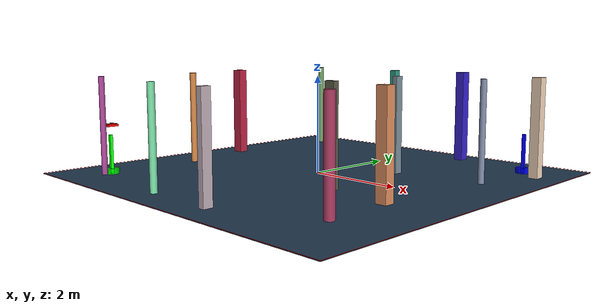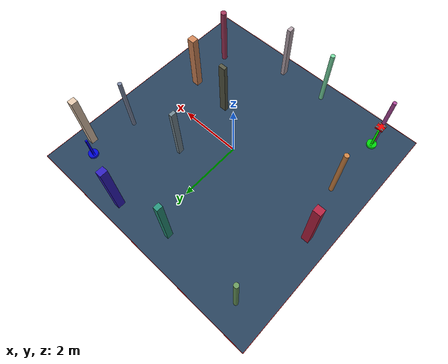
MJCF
<?xml version='1.0' encoding='utf-8'?>
<mujoco model="complex_uav_env">
  <compiler angle="degree" coordinate="local" inertiafromgeom="true" />
  <option integrator="RK4" timestep="0.01" />

  <visual>
    <headlight diffuse="0.6 0.6 0.6" ambient="0.3 0.3 0.3" />
    <rgba haze="0.15 0.25 0.35 1" />
    <global offwidth="2560" offheight="1440" />
  </visual>

  <asset>
    <texture type="skybox" builtin="gradient" rgb1="0.3 0.5 0.7" rgb2="0 0 0" width="512" height="3072" />
    <texture name="grid" type="2d" builtin="checker" rgb1="0.1 0.2 0.3" rgb2="0.2 0.3 0.4" width="512" height="512" />
    <material name="grid" texture="grid" texrepeat="1 1" />
  </asset>

  <worldbody>

    <geom name="ground" type="plane" size="4.0 4.0 0.1" material="grid" />
    <light name="light1" pos="0 0 4" dir="0 0 -1" diffuse="1 1 1" />

    <geom name="start_marker" type="cylinder" size="0.15 0.05" pos="-3.0 -3.0 0.05" rgba="0 1 0 0.8" />
    <geom name="start_pole" type="box" size="0.03 0.03 0.4" pos="-3.0 -3.0 0.4" rgba="0 1 0 1" />

    <geom name="goal_marker" type="cylinder" size="0.15 0.05" pos="3.0 3.0 0.05" rgba="0 0 1 0.8" />
    <geom name="goal_pole" type="box" size="0.03 0.03 0.4" pos="3.0 3.0 0.4" rgba="0 0 1 1" />

    <body name="chassis" pos="-3.0 -3.0 1.0">
      <joint type="free" name="root" />
      <geom type="box" size="0.12 0.12 0.02" rgba="1.0 0.0 0.0 1.0" mass="0.8" />

      <geom type="box" size="0.08 0.01 0.005" pos="0 0 0.01" rgba="0.3 0.3 0.3 1" />
      <geom type="box" size="0.01 0.08 0.005" pos="0 0 0.01" rgba="0.3 0.3 0.3 1" />

      <geom type="cylinder" size="0.015 0.02" pos="0.08 0.08 0.015" rgba="0.2 0.2 0.2 1" />
      <geom type="cylinder" size="0.015 0.02" pos="-0.08 0.08 0.015" rgba="0.2 0.2 0.2 1" />
      <geom type="cylinder" size="0.015 0.02" pos="0.08 -0.08 0.015" rgba="0.2 0.2 0.2 1" />
      <geom type="cylinder" size="0.015 0.02" pos="-0.08 -0.08 0.015" rgba="0.2 0.2 0.2 1" />

      <geom type="cylinder" size="0.04 0.002" pos="0.08 0.08 0.035" rgba="0.7 0.7 0.7 0.8" />
      <geom type="cylinder" size="0.04 0.002" pos="-0.08 0.08 0.035" rgba="0.7 0.7 0.7 0.8" />
      <geom type="cylinder" size="0.04 0.002" pos="0.08 -0.08 0.035" rgba="0.7 0.7 0.7 0.8" />
      <geom type="cylinder" size="0.04 0.002" pos="-0.08 -0.08 0.035" rgba="0.7 0.7 0.7 0.8" />

      <site name="motor1" pos="0.08 0.08 0" size="0.01" />
      <site name="motor2" pos="-0.08 0.08 0" size="0.01" />
      <site name="motor3" pos="0.08 -0.08 0" size="0.01" />
      <site name="motor4" pos="-0.08 -0.08 0" size="0.01" />
    </body>
    <geom name="test_obs_0" type="cylinder" size="0.06492022927835209 1.0" pos="-3.084914791404858 3.2530462461616354 1.0" rgba="0.404760637691027 0.5867585396732448 0.3578873755277543 1.0" />
    <geom name="test_obs_1" type="box" size="0.09570101445015333 0.10370902094747579 1.0" pos="3.4324574188932324 2.6879245458628533 1.0" rgba="0.8726013880799545 0.7711697128555778 0.6718076864964878 1.0" />
    <geom name="test_obs_2" type="box" size="0.1129118979302602 0.06227166988653107 1.0" pos="1.2825399620104299 -0.9446192685969875 1.0" rgba="0.3269265118325162 0.3313123142855998 0.2588338987261497 1.0" />
    <geom name="test_obs_3" type="box" size="0.09656802792905232 0.11531814787336109 1.0" pos="1.178530694764639 3.492551936162239 1.0" rgba="0.18069404989039572 0.11338792204414228 0.7320934282577971 1.0" />
    <geom name="test_obs_4" type="box" size="0.052118094489582587 0.09065208855226844 1.0" pos="1.1606749659078883 1.1309180051108343 1.0" rgba="0.4444771159787646 0.5212475286166214 0.5600893901742889 1.0" />
    <geom name="test_obs_5" type="box" size="0.0616660504561056 0.09734231631565195 1.0" pos="0.7896013992628982 -3.397399266214153 1.0" rgba="0.692512609533342 0.6297060691119356 0.6625738413118352 1.0" />
    <geom name="test_obs_6" type="box" size="0.07198780664041557 0.09129137720032297 1.0" pos="-0.5243028466572641 3.1823322455507013 1.0" rgba="0.15130838836680596 0.5658854883002622 0.4744508867316263 1.0" />
    <geom name="test_obs_7" type="box" size="0.11634124384272908 0.10606734059122444 1.0" pos="-3.3556654167104734 0.684194517401271 1.0" rgba="0.6848516045349197 0.12486771599978513 0.24335230859910234 1.0" />
    <geom name="test_obs_8" type="cylinder" size="0.06941108973792513 1.0" pos="-0.7775255393084796 -3.3950974128550357 1.0" rgba="0.4563639782774763 0.8351689970654125 0.6266392005814978 1.0" />
    <geom name="test_obs_9" type="cylinder" size="0.09406695915051388 1.0" pos="2.7521724540816566 -2.5311418723627175 1.0" rgba="0.6150569861864648 0.20637800698631886 0.34658689848090585 1.0" />
    <geom name="test_obs_10" type="box" size="0.11576447659077099 0.10482600279509471 1.0" pos="2.670659183523169 -1.1134287692039626 1.0" rgba="0.8063453503160755 0.5165559864868474 0.3403416522342474 1.0" />
    <geom name="test_obs_11" type="cylinder" size="0.05781697529013523 1.0" pos="-2.990641914389549 -3.1633574256581216 1.0" rgba="0.6513445225434903 0.2660392646909364 0.5799292550465366 1.0" />
    <geom name="test_obs_12" type="cylinder" size="0.07036509940820379 1.0" pos="-2.978210957772813 -0.9583638383736339 1.0" rgba="0.7912413741998231 0.5036264084162483 0.26107550156004733 1.0" />
    <geom name="test_obs_13" type="cylinder" size="0.061148085316788114 1.0" pos="2.9618670295772205 1.4366232738811724 1.0" rgba="0.4723259200871619 0.519785791482181 0.6286781550177649 1.0" />
  <geom name="boundary_north" type="box" size="4.0 0.005 0.002" pos="0 4.0 0.002" rgba="1.0 0.0 0.0 1.0" /><geom name="boundary_south" type="box" size="4.0 0.005 0.002" pos="0 -4.0 0.002" rgba="1.0 0.0 0.0 1.0" /><geom name="boundary_east" type="box" size="0.005 4.0 0.002" pos="4.0 0 0.002" rgba="1.0 0.0 0.0 1.0" /><geom name="boundary_west" type="box" size="0.005 4.0 0.002" pos="-4.0 0 0.002" rgba="1.0 0.0 0.0 1.0" /></worldbody>

  <actuator>
    <motor name="m1" gear="0 0 1 0 0 0" site="motor1" />
    <motor name="m2" gear="0 0 1 0 0 0" site="motor2" />
    <motor name="m3" gear="0 0 1 0 0 0" site="motor3" />
    <motor name="m4" gear="0 0 1 0 0 0" site="motor4" />
  </actuator>
</mujoco>
